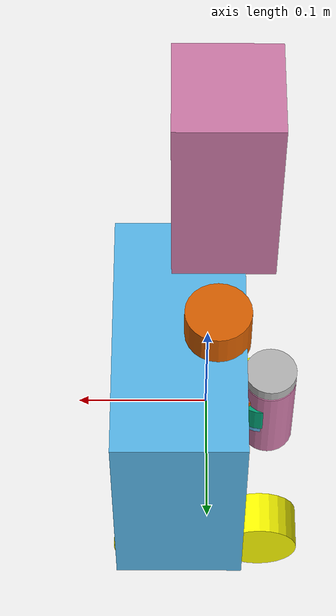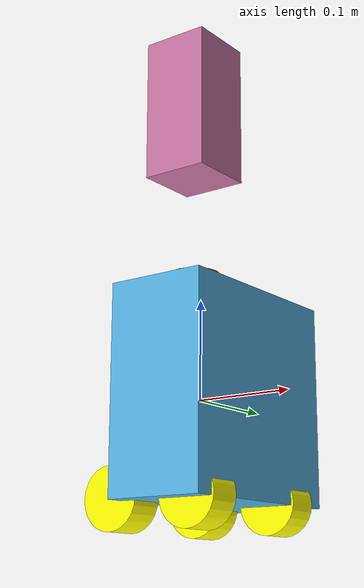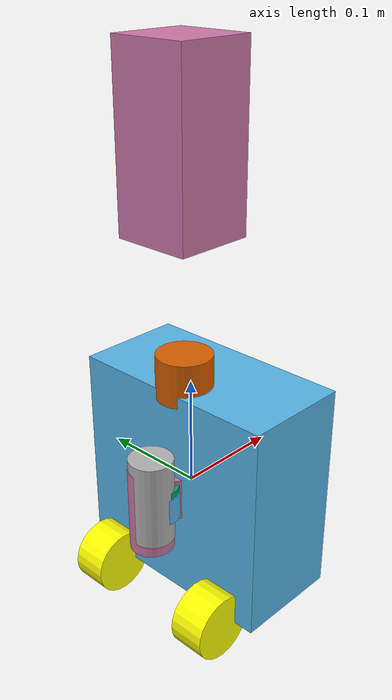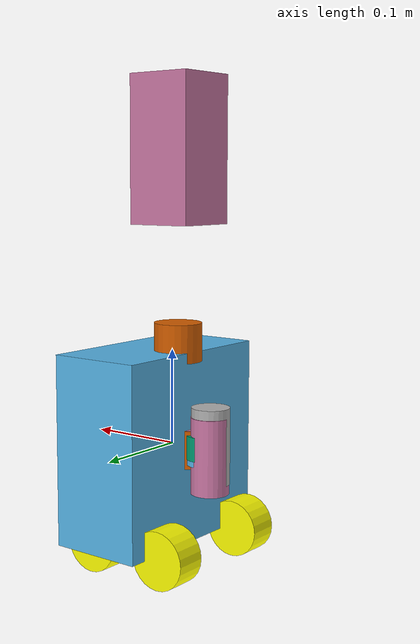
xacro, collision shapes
<?xml version='1.0' encoding='UTF-8'?>
<robot name="jedy">
  <link name="base_link"/>
  <link name="real_base_link">
    <inertial>
      <origin xyz="0.00124 1.38911e-10 0.02081" rpy="0.0 -0.0 0.0"/>
      <mass value="0.671312"/>
      <inertia ixx="0.001849" ixy="-8.30713e-06" ixz="-1.71308e-06" iyy="0.002122" iyz="1.45167e-06" izz="0.003179"/>
    </inertial>
    <visual>
      <geometry>
        <mesh filename="package://jedy_description/meshes/base_link.dae"/>
      </geometry>
      <origin xyz="0.0 0.0 0.0" rpy="0.0 -0.0 0.0"/>
    </visual>
    <collision>
      <geometry>
        <box size="0.200 0.200 0.100"/>
      </geometry>
      <origin xyz="0.0 0.0 0.021" rpy="0.0 0.0 0.0"/>
    </collision>
  </link>
  <link name="base_laser"/>
  <link name="rarm_link0">
    <inertial>
      <origin xyz="0.00750000000000114 0.0511983289893697 -0.0774229781318287" rpy="0.0 -0.0 0.0"/>
      <mass value="0.00775312250160503"/>
      <inertia ixx="0.0001" ixy="0.0" ixz="0.0" iyy="0.0001" iyz="0.0" izz="0.0001"/>
    </inertial>
    <visual>
      <geometry>
        <mesh filename="package://jedy_description/meshes/rarm_link0.dae"/>
      </geometry>
      <origin xyz="0.0 0.0 0.0" rpy="0.0 -0.0 0.0"/>
    </visual>
    <collision>
      <geometry>
        <cylinder radius="0.015" length="0.035"/>
      </geometry>
      <origin xyz="0.0075 0.05 -0.077" rpy="0.0 0.0 0.0"/>
    </collision>
  </link>
  <link name="rarm_link1">
    <inertial>
      <origin xyz="0.0060726594429343 0.0630174693748998 -0.076278104560333" rpy="0.0 -0.0 0.0"/>
      <mass value="0.0488819579417231"/>
      <inertia ixx="0.0001" ixy="-2.40958659059239e-08" ixz="-1.15959128616825e-08" iyy="0.0001" iyz="-4.77616974109193e-10" izz="0.0001"/>
    </inertial>
    <visual>
      <geometry>
        <mesh filename="package://jedy_description/meshes/rarm_link1.dae"/>
      </geometry>
      <origin xyz="0.0 0.0 0.0" rpy="0.0 -0.0 0.0"/>
    </visual>
    <collision>
      <geometry>
        <cylinder radius="0.018" length="0.025"/>
      </geometry>
      <origin xyz="0.006 0.063 -0.076" rpy="0.0 0.0 0.0"/>
    </collision>
  </link>
  <link name="rarm_link2">
    <inertial>
      <origin xyz="-0.013781849714382 0.078576090677525 -0.0510708977208851" rpy="0.0 -0.0 0.0"/>
      <mass value="0.0267722516782373"/>
      <inertia ixx="0.0001" ixy="-2.1054501660018e-08" ixz="1.16767691320589e-08" iyy="0.0001" iyz="3.18816576527695e-09" izz="0.0001"/>
    </inertial>
    <visual>
      <geometry>
        <mesh filename="package://jedy_description/meshes/rarm_link2.dae"/>
      </geometry>
      <origin xyz="0.0 0.0 0.0" rpy="0.0 -0.0 0.0"/>
    </visual>
    <collision>
      <geometry>
        <cylinder radius="0.018" length="0.040"/>
      </geometry>
      <origin xyz="-0.014 0.079 -0.051" rpy="0.0 0.0 0.0"/>
    </collision>
  </link>
  <link name="rarm_link3">
    <inertial>
      <origin xyz="-0.0419797687715683 0.0785695933122011 -0.0231515381895025" rpy="0.0 -0.0 0.0"/>
      <mass value="0.0356190541582585"/>
      <inertia ixx="0.0001" ixy="5.40131440804977e-08" ixz="-3.18560639543114e-09" iyy="0.0001" iyz="1.16768356053738e-08" izz="0.0001"/>
    </inertial>
    <visual>
      <geometry>
        <mesh filename="package://jedy_description/meshes/rarm_link3.dae"/>
      </geometry>
      <origin xyz="0.0 0.0 0.0" rpy="0.0 -0.0 0.0"/>
    </visual>
    <collision>
      <geometry>
        <cylinder radius="0.020" length="0.080"/>
      </geometry>
      <origin xyz="-0.042 0.079 -0.023" rpy="0.0 0.0 0.0"/>
    </collision>
  </link>
  <link name="rarm_link4">
    <inertial>
      <origin xyz="0.0016510438589472 0.0778057578962844 0.0566210301742714" rpy="0.0 -0.0 0.0"/>
      <mass value="0.00736377671410321"/>
      <inertia ixx="0.0001" ixy="4.64911587686377e-09" ixz="-1.21774119934071e-14" iyy="0.0001" iyz="-1.47706067420849e-12" izz="0.0001"/>
    </inertial>
    <visual>
      <geometry>
        <mesh filename="package://jedy_description/meshes/rarm_link4.dae"/>
      </geometry>
      <origin xyz="0.0 0.0 0.0" rpy="0.0 -0.0 0.0"/>
    </visual>
    <collision>
      <geometry>
        <cylinder radius="0.015" length="0.030"/>
      </geometry>
      <origin xyz="0.002 0.078 0.057" rpy="0.0 0.0 0.0"/>
    </collision>
  </link>
  <link name="rarm_link5">
    <inertial>
      <origin xyz="-0.000466911885189514 0.0624063256412892 0.0815726594429263" rpy="0.0 -0.0 0.0"/>
      <mass value="0.0488819579417229"/>
      <inertia ixx="0.0001" ixy="-1.80131374142072e-08" ixz="-2.38311555265213e-08" iyy="0.0001" iyz="1.15959128617003e-08" izz="0.0001"/>
    </inertial>
    <visual>
      <geometry>
        <mesh filename="package://jedy_description/meshes/rarm_link5.dae"/>
      </geometry>
      <origin xyz="0.0 0.0 0.0" rpy="0.0 -0.0 0.0"/>
    </visual>
    <collision>
      <geometry>
        <cylinder radius="0.018" length="0.028"/>
      </geometry>
      <origin xyz="-0.0005 0.062 0.082" rpy="0.0 0.0 0.0"/>
    </collision>
  </link>
  <link name="rarm_link6">
    <inertial>
      <origin xyz="-0.0330277428947269 0.0768233052251458 0.100619882815324" rpy="0.0 -0.0 0.0"/>
      <mass value="0.0333926389608614"/>
      <inertia ixx="0.0001" ixy="2.99884795330491e-07" ixz="1.36097064864093e-08" iyy="0.0001" iyz="2.71887959762946e-08" izz="0.0001"/>
    </inertial>
    <visual>
      <geometry>
        <mesh filename="package://jedy_description/meshes/rarm_link6.dae"/>
      </geometry>
      <origin xyz="0.0 0.0 0.0" rpy="0.0 -0.0 0.0"/>
    </visual>
    <collision>
      <geometry>
        <cylinder radius="0.020" length="0.025"/>
      </geometry>
      <origin xyz="-0.033 0.077 0.101" rpy="0.0 0.0 0.0"/>
    </collision>
  </link>
  <link name="rarm_link7">
    <inertial>
      <origin xyz="-0.00575793188359448 0.0909946641170031 0.154628764458567" rpy="0.0 -0.0 0.0"/>
      <mass value="0.00895541725275716"/>
      <inertia ixx="0.0001" ixy="2.90079247027908e-07" ixz="1.36850293455652e-12" iyy="0.0001" iyz="5.6685247064795e-13" izz="0.0001"/>
    </inertial>
    <visual>
      <geometry>
        <mesh filename="package://jedy_description/meshes/rarm_link7.dae"/>
      </geometry>
      <origin xyz="0.0 0.0 0.0" rpy="0.0 -0.0 0.0"/>
    </visual>
    <collision>
      <geometry>
        <box size="0.012 0.030 0.060"/>
      </geometry>
      <origin xyz="-0.006 0.091 0.155" rpy="0.0 0.0 0.0"/>
    </collision>
  </link>
  <link name="rarm_link8">
    <inertial>
      <origin xyz="-0.00575793188359814 0.064611878473499 0.165977177563427" rpy="0.0 -0.0 0.0"/>
      <mass value="0.00895541725275716"/>
      <inertia ixx="0.0001" ixy="-2.90079247027908e-07" ixz="1.3685029352065e-12" iyy="0.0001" iyz="-5.66852472660774e-13" izz="0.0001"/>
    </inertial>
    <visual>
      <geometry>
        <mesh filename="package://jedy_description/meshes/rarm_link8.dae"/>
      </geometry>
      <origin xyz="0.0 0.0 0.0" rpy="0.0 -0.0 0.0"/>
    </visual>
    <collision>
      <geometry>
        <box size="0.012 0.030 0.060"/>
      </geometry>
      <origin xyz="-0.006 0.065 0.166" rpy="0.0 0.0 0.0"/>
    </collision>
  </link>
  <link name="larm_link0">
    <inertial>
      <origin xyz="0.00750000000000804 0.0498016710106214 0.0774229781318285" rpy="0.0 -0.0 0.0"/>
      <mass value="0.00775312250160503"/>
      <inertia ixx="0.0001" ixy="3.76136064915158e-22" ixz="7.33040243663328e-09" iyy="0.0001" iyz="-9.82862838779766e-22" izz="0.0001"/>
    </inertial>
    <visual>
      <geometry>
        <mesh filename="package://jedy_description/meshes/larm_link0.dae"/>
      </geometry>
      <origin xyz="0.0 0.0 0.0" rpy="0.0 -0.0 0.0"/>
    </visual>
    <collision>
      <geometry>
        <cylinder radius="0.015" length="0.035"/>
      </geometry>
      <origin xyz="0.0075 0.05 0.077" rpy="0.0 0.0 0.0"/>
    </collision>
  </link>
  <link name="larm_link1">
    <inertial>
      <origin xyz="0.00742734055676281 -0.0939825306250985 -0.0607218954396666" rpy="0.0 -0.0 0.0"/>
      <mass value="0.0488819579417233"/>
      <inertia ixx="0.0001" ixy="-2.40958659059249e-08" ixz="1.15959128616777e-08" iyy="0.0001" iyz="4.77616974083206e-10" izz="0.0001"/>
    </inertial>
    <visual>
      <geometry>
        <mesh filename="package://jedy_description/meshes/larm_link1.dae"/>
      </geometry>
      <origin xyz="0.0 0.0 0.0" rpy="0.0 -0.0 0.0"/>
    </visual>
    <collision>
      <geometry>
        <cylinder radius="0.018" length="0.025"/>
      </geometry>
      <origin xyz="0.007 -0.094 -0.061" rpy="0.0 0.0 0.0"/>
    </collision>
  </link>
  <link name="larm_link2">
    <inertial>
      <origin xyz="-0.0137818497143928 -0.0785760906775208 -0.0509291022791145" rpy="0.0 -0.0 0.0"/>
      <mass value="0.0267722516782377"/>
      <inertia ixx="0.0001" ixy="2.10545016600191e-08" ixz="1.16767691320627e-08" iyy="0.0001" iyz="-3.18816576528393e-09" izz="0.0001"/>
    </inertial>
    <visual>
      <geometry>
        <mesh filename="package://jedy_description/meshes/larm_link2.dae"/>
      </geometry>
      <origin xyz="0.0 0.0 0.0" rpy="0.0 -0.0 0.0"/>
    </visual>
    <collision>
      <geometry>
        <cylinder radius="0.018" length="0.040"/>
      </geometry>
      <origin xyz="-0.014 -0.079 -0.051" rpy="0.0 0.0 0.0"/>
    </collision>
  </link>
  <link name="larm_link3">
    <inertial>
      <origin xyz="-0.0419797687715708 -0.0785572640137325 -0.012692437828887" rpy="0.0 -0.0 0.0"/>
      <mass value="0.035619054158259"/>
      <inertia ixx="0.0001" ixy="-4.07455626958971e-08" ixz="-3.18560639540328e-09" iyy="0.0001" iyz="-1.1676718625715e-08" izz="0.0001"/>
    </inertial>
    <visual>
      <geometry>
        <mesh filename="package://jedy_description/meshes/larm_link3.dae"/>
      </geometry>
      <origin xyz="0.0 0.0 0.0" rpy="0.0 -0.0 0.0"/>
    </visual>
    <collision>
      <geometry>
        <cylinder radius="0.020" length="0.080"/>
      </geometry>
      <origin xyz="-0.042 -0.079 -0.013" rpy="0.0 0.0 0.0"/>
    </collision>
  </link>
  <link name="larm_link4">
    <inertial>
      <origin xyz="0.00165104385894364 -0.0778057578962786 0.0573789698257278" rpy="0.0 -0.0 0.0"/>
      <mass value="0.0073637767141032"/>
      <inertia ixx="0.0001" ixy="-4.64911587686424e-09" ixz="-1.21774114868373e-14" iyy="0.0001" iyz="1.47706067387539e-12" izz="0.0001"/>
    </inertial>
    <visual>
      <geometry>
        <mesh filename="package://jedy_description/meshes/larm_link4.dae"/>
      </geometry>
      <origin xyz="0.0 0.0 0.0" rpy="0.0 -0.0 0.0"/>
    </visual>
    <collision>
      <geometry>
        <cylinder radius="0.015" length="0.030"/>
      </geometry>
      <origin xyz="0.002 -0.078 0.057" rpy="0.0 0.0 0.0"/>
    </collision>
  </link>
  <link name="larm_link5">
    <inertial>
      <origin xyz="-0.000466911885188184 -0.0932044741964692 0.083072659443248" rpy="0.0 -0.0 0.0"/>
      <mass value="0.0488819579417233"/>
      <inertia ixx="0.0001" ixy="-1.80131374141397e-08" ixz="-2.38311555265008e-08" iyy="0.0001" iyz="1.15959128617046e-08" izz="0.0001"/>
    </inertial>
    <visual>
      <geometry>
        <mesh filename="package://jedy_description/meshes/larm_link5.dae"/>
      </geometry>
      <origin xyz="0.0 0.0 0.0" rpy="0.0 -0.0 0.0"/>
    </visual>
    <collision>
      <geometry>
        <cylinder radius="0.018" length="0.028"/>
      </geometry>
      <origin xyz="-0.0005 -0.093 0.083" rpy="0.0 0.0 0.0"/>
    </collision>
  </link>
  <link name="larm_link6">
    <inertial>
      <origin xyz="-0.033027742894731 -0.0777001820412116 0.107380117184671" rpy="0.0 -0.0 0.0"/>
      <mass value="0.0333926389608612"/>
      <inertia ixx="0.0001" ixy="-2.99884795330496e-07" ixz="1.36097064863934e-08" iyy="0.0001" iyz="-1.25309536168303e-08" izz="0.0001"/>
    </inertial>
    <visual>
      <geometry>
        <mesh filename="package://jedy_description/meshes/larm_link6.dae"/>
      </geometry>
      <origin xyz="0.0 0.0 0.0" rpy="0.0 -0.0 0.0"/>
    </visual>
    <collision>
      <geometry>
        <cylinder radius="0.020" length="0.025"/>
      </geometry>
      <origin xyz="-0.033 -0.078 0.107" rpy="0.0 0.0 0.0"/>
    </collision>
  </link>
  <link name="larm_link7">
    <inertial>
      <origin xyz="-0.00575793188358857 -0.0909946641169996 0.165977177563423" rpy="0.0 -0.0 0.0"/>
      <mass value="0.00895541725275716"/>
      <inertia ixx="0.0001" ixy="-2.90079247027908e-07" ixz="1.3685029341339e-12" iyy="0.0001" iyz="-5.66852473175791e-13" izz="0.0001"/>
    </inertial>
    <visual>
      <geometry>
        <mesh filename="package://jedy_description/meshes/larm_link7.dae"/>
      </geometry>
      <origin xyz="0.0 0.0 0.0" rpy="0.0 -0.0 0.0"/>
    </visual>
    <collision>
      <geometry>
        <box size="0.012 0.030 0.060"/>
      </geometry>
      <origin xyz="-0.006 -0.091 0.166" rpy="0.0 0.0 0.0"/>
    </collision>
  </link>
  <link name="larm_link8">
    <inertial>
      <origin xyz="-0.00575793188358593 -0.0646118784734955 0.154628764458567" rpy="0.0 -0.0 0.0"/>
      <mass value="0.00895541725275716"/>
      <inertia ixx="0.0001" ixy="2.90079247027908e-07" ixz="1.36850293341796e-12" iyy="0.0001" iyz="5.66852471090155e-13" izz="0.0001"/>
    </inertial>
    <visual>
      <geometry>
        <mesh filename="package://jedy_description/meshes/larm_link8.dae"/>
      </geometry>
      <origin xyz="0.0 0.0 0.0" rpy="0.0 -0.0 0.0"/>
    </visual>
    <collision>
      <geometry>
        <box size="0.012 0.030 0.060"/>
      </geometry>
      <origin xyz="-0.006 -0.065 0.155" rpy="0.0 0.0 0.0"/>
    </collision>
  </link>
  <link name="head_link0">
    <inertial>
      <origin xyz="-1.73472e-18 1.22056e-18 0.023093" rpy="0.0 -0.0 0.0"/>
      <mass value="0.037398"/>
      <inertia ixx="8.69139e-05" ixy="-8.96373e-22" ixz="8.61164e-09" iyy="9.09972e-05" iyz="-5.25778e-09" izz="2.5436e-05"/>
    </inertial>
    <visual>
      <geometry>
        <mesh filename="package://jedy_description/meshes/head_link0.dae"/>
      </geometry>
      <origin xyz="0.0 0.0 0.0" rpy="0.0 -0.0 0.0"/>
    </visual>
    <collision>
      <geometry>
        <cylinder radius="0.025" length="0.040"/>
      </geometry>
      <origin xyz="0.0 0.0 0.023" rpy="0.0 0.0 0.0"/>
    </collision>
  </link>
  <link name="head_link1">
    <inertial>
      <origin xyz="-0.001016 3.60351e-18 0.186465" rpy="0.0 -0.0 0.0"/>
      <mass value="0.093045"/>
      <inertia ixx="0.000665" ixy="-1.79922e-07" ixz="-6.65543e-08" iyy="0.000652" iyz="-1.79583e-08" izz="0.000109"/>
    </inertial>
    <visual>
      <geometry>
        <mesh filename="package://jedy_description/meshes/head_link1.dae"/>
      </geometry>
      <origin xyz="0.0 0.0 0.0" rpy="0.0 -0.0 0.0"/>
    </visual>
    <collision>
      <geometry>
        <box size="0.070 0.070 0.150"/>
      </geometry>
      <origin xyz="-0.001 0.0 0.186" rpy="0.0 0.0 0.0"/>
    </collision>
  </link>
  <link name="front_right_wheel_link">
    <inertial>
      <origin xyz="-6.93889e-18 0.016915 0.0" rpy="0.0 -0.0 0.0"/>
      <mass value="0.095024"/>
      <inertia ixx="0.000174" ixy="5.9261e-22" ixz="5.04911e-20" iyy="0.000173" iyz="-1.9762e-20" izz="0.000262"/>
    </inertial>
    <visual>
      <geometry>
        <cylinder radius="0.030082940123975277" length="0.0336999895516783"/>
      </geometry>
      <origin xyz="-0.01364997576456517 2.9239803552627563e-05 -8.88695940375328e-05" rpy="0.0 1.5707963267948963 0.0"/>
      <material name="yellow">
        <color rgba="1.0 1.0 0.0 1.0"/>
      </material>
    </visual>
    <collision>
      <geometry>
        <cylinder radius="0.030082940123975277" length="0.0336999895516783"/>
      </geometry>
      <origin xyz="-0.01364997576456517 2.9239803552627563e-05 -8.88695940375328e-05" rpy="0.0 1.5707963267948963 0.0"/>
    </collision>
  </link>
  <link name="front_left_wheel_link">
    <inertial>
      <origin xyz="-6.93889e-18 0.016915 0.0" rpy="0.0 -0.0 0.0"/>
      <mass value="0.095024"/>
      <inertia ixx="0.000174" ixy="5.9261e-22" ixz="5.04911e-20" iyy="0.000173" iyz="-1.9762e-20" izz="0.000262"/>
    </inertial>
    <visual>
      <geometry>
        <cylinder radius="0.03012910485267639" length="0.0336999895516783"/>
      </geometry>
      <origin xyz="0.01364997576456517 -0.00011649541556835175 -0.00010368041694164276" rpy="0.0 1.5707963267948963 0.0"/>
      <material name="yellow">
        <color rgba="1.0 1.0 0.0 1.0"/>
      </material>
    </visual>
    <collision>
      <geometry>
        <cylinder radius="0.03012910485267639" length="0.0336999895516783"/>
      </geometry>
      <origin xyz="0.01364997576456517 -0.00011649541556835175 -0.00010368041694164276" rpy="0.0 1.5707963267948963 0.0"/>
    </collision>
  </link>
  <link name="rear_right_wheel_link">
    <inertial>
      <origin xyz="-6.93889e-18 0.016915 0.0" rpy="0.0 -0.0 0.0"/>
      <mass value="0.095024"/>
      <inertia ixx="0.000174" ixy="5.9261e-22" ixz="5.04911e-20" iyy="0.000173" iyz="-1.9762e-20" izz="0.000262"/>
    </inertial>
    <visual>
      <geometry>
        <cylinder radius="0.030142544768750668" length="0.0336999895516783"/>
      </geometry>
      <origin xyz="-0.01364997576456517 0.00010615494102239609 -3.0875205993652344e-05" rpy="0.0 1.5707963267948963 0.0"/>
      <material name="yellow">
        <color rgba="1.0 1.0 0.0 1.0"/>
      </material>
    </visual>
    <collision>
      <geometry>
        <cylinder radius="0.030142544768750668" length="0.0336999895516783"/>
      </geometry>
      <origin xyz="-0.01364997576456517 0.00010615494102239609 -3.0875205993652344e-05" rpy="0.0 1.5707963267948963 0.0"/>
    </collision>
  </link>
  <link name="rear_left_wheel_link">
    <inertial>
      <origin xyz="-6.93889e-18 0.016915 0.0" rpy="0.0 -0.0 0.0"/>
      <mass value="0.095024"/>
      <inertia ixx="0.000174" ixy="5.9261e-22" ixz="5.04911e-20" iyy="0.000173" iyz="-1.9762e-20" izz="0.000262"/>
    </inertial>
    <visual>
      <geometry>
        <cylinder radius="0.030229220166802406" length="0.0336999895516783"/>
      </geometry>
      <origin xyz="0.01364997576456517 0.00011532939970493317 5.5635347962379456e-05" rpy="0.0 1.5707963267948963 0.0"/>
      <material name="yellow">
        <color rgba="1.0 1.0 0.0 1.0"/>
      </material>
    </visual>
    <collision>
      <geometry>
        <cylinder radius="0.030229220166802406" length="0.0336999895516783"/>
      </geometry>
      <origin xyz="0.01364997576456517 0.00011532939970493317 5.5635347962379456e-05" rpy="0.0 1.5707963267948963 0.0"/>
    </collision>
  </link>
  <link name="camera_link">
    <inertial>
      <origin xyz="0.0 0.0 0.0" rpy="0.0 -0.0 0.0"/>
      <mass value="0.0"/>
      <inertia ixx="0.003881243" ixy="0.0" ixz="0.0" iyy="0.00049894" iyz="0.0" izz="0.003879257"/>
    </inertial>
  </link>
  <link name="camera_color_frame"/>
  <link name="camera_color_optical_frame"/>
  <link name="camera_depth_frame"/>
  <link name="camera_depth_optical_frame"/>
  <joint name="pseudo_base_joint" type="fixed">
    <limit effort="0.0" velocity="0.0"/>
    <parent link="base_link"/>
    <child link="real_base_link"/>
    <axis xyz="0. 0. 0."/>
    <origin xyz="0.0 0.0 0.0" rpy="1.5707926535897931 -0.0 1.5707926535897931"/>
  </joint>
  <joint name="base_laser_joint" type="fixed">
    <limit effort="0.0" velocity="0.0"/>
    <parent link="base_link"/>
    <child link="base_laser"/>
    <axis xyz="1. 0. 0."/>
    <origin xyz="0.1 0.0 -0.0" rpy="0.0 -0.0 0.0"/>
  </joint>
  <joint name="rarm_joint0" type="revolute">
    <limit effort="0.48" velocity="6.55" lower="-2.35" upper="2.35"/>
    <parent link="real_base_link"/>
    <child link="rarm_link0"/>
    <axis xyz="0. 1. 0."/>
    <origin xyz="-0.0505 0.0685 -0.0075" rpy="-1.5707926535897931 -1.5707926535897931 -0.001592653589793114"/>
  </joint>
  <joint name="rarm_joint1" type="revolute">
    <limit effort="0.48" velocity="6.55" lower="-2.35" upper="0.52"/>
    <parent link="rarm_link0"/>
    <child link="rarm_link1"/>
    <axis xyz="1. 0. 0."/>
    <origin xyz="0.0 -0.028 0.0" rpy="0.0 -0.0 0.0"/>
  </joint>
  <joint name="rarm_joint2" type="revolute">
    <limit effort="0.48" velocity="6.55" lower="-2.35" upper="2.35"/>
    <parent link="rarm_link1"/>
    <child link="rarm_link2"/>
    <axis xyz="0. 0. 1."/>
    <origin xyz="0.0 0.0 -0.0175" rpy="0.0 -0.0 0.0"/>
  </joint>
  <joint name="rarm_joint3" type="revolute">
    <limit effort="0.48" velocity="6.55" lower="-2.35" upper="2.35"/>
    <parent link="rarm_link2"/>
    <child link="rarm_link3"/>
    <axis xyz="0. 1. 0."/>
    <origin xyz="0.0 0.0 -0.033" rpy="0.0 -0.0 0.0"/>
  </joint>
  <joint name="rarm_joint4" type="revolute">
    <limit effort="0.48" velocity="6.55" lower="-2.35" upper="2.35"/>
    <parent link="rarm_link3"/>
    <child link="rarm_link4"/>
    <axis xyz="0. 0. 1."/>
    <origin xyz="-0.0024791 0.0006946 -0.075" rpy="0.0 -0.0 0.0"/>
  </joint>
  <joint name="rarm_joint5" type="revolute">
    <limit effort="0.48" velocity="6.55" lower="-1.57" upper="1.05"/>
    <parent link="rarm_link4"/>
    <child link="rarm_link5"/>
    <axis xyz="0. 1. 0."/>
    <origin xyz="0.0 0.0 -0.026" rpy="0.0 -0.0 0.0"/>
  </joint>
  <joint name="rarm_joint6" type="revolute">
    <limit effort="0.48" velocity="6.55" lower="-1.57" upper="1.57"/>
    <parent link="rarm_link5"/>
    <child link="rarm_link6"/>
    <axis xyz="1. 0. 0."/>
    <origin xyz="0.0 0.0 -0.021" rpy="0.0 -0.0 0.0"/>
  </joint>
  <joint name="rarm_gripper_joint" type="revolute">
    <limit effort="0.48" velocity="6.55" lower="-0.5" upper="1.57"/>
    <parent link="rarm_link6"/>
    <child link="rarm_link7"/>
    <axis xyz="-1. 0. 0."/>
    <origin xyz="0.0 -0.011737 -0.056303" rpy="0.0 -0.0 0.0"/>
  </joint>
  <joint name="rarm_mimic_gripper_joint" type="revolute">
    <limit effort="0.48" velocity="6.55" lower="-1.57" upper="0.5"/>
    <mimic joint="rarm_gripper_joint" multiplier="-1.0" offset="0.0"/>
    <parent link="rarm_link6"/>
    <child link="rarm_link8"/>
    <axis xyz="-1. 0. 0."/>
    <origin xyz="0.0 0.011741 -0.056303" rpy="0.0 -0.0 0.0"/>
  </joint>
  <joint name="larm_joint0" type="revolute">
    <limit effort="0.48" velocity="6.55" lower="-2.35" upper="2.35"/>
    <parent link="real_base_link"/>
    <child link="larm_link0"/>
    <axis xyz="0. 1. 0."/>
    <origin xyz="0.0505 0.0685 -0.0075" rpy="-1.5707926535897931 -1.5707926535897931 3.141592653589793"/>
  </joint>
  <joint name="larm_joint1" type="revolute">
    <limit effort="0.48" velocity="6.55" lower="-0.56" upper="2.35"/>
    <parent link="larm_link0"/>
    <child link="larm_link1"/>
    <axis xyz="1. 0. 0."/>
    <origin xyz="0.0 -0.028 0.0" rpy="3.1415853071795867 -0.0 0.0"/>
  </joint>
  <joint name="larm_joint2" type="revolute">
    <limit effort="0.48" velocity="6.55" lower="-2.35" upper="2.35"/>
    <parent link="larm_link1"/>
    <child link="larm_link2"/>
    <axis xyz="0. 0. 1."/>
    <origin xyz="0.0 0.0 -0.0175" rpy="0.0 -0.0 0.0"/>
  </joint>
  <joint name="larm_joint3" type="revolute">
    <limit effort="0.48" velocity="6.55" lower="-2.35" upper="2.35"/>
    <parent link="larm_link2"/>
    <child link="larm_link3"/>
    <axis xyz="0. 1. 0."/>
    <origin xyz="0.0 0.0 -0.033" rpy="0.0 -0.0 0.0"/>
  </joint>
  <joint name="larm_joint4" type="revolute">
    <limit effort="0.48" velocity="6.55" lower="-2.35" upper="2.35"/>
    <parent link="larm_link3"/>
    <child link="larm_link4"/>
    <axis xyz="0. 0. 1."/>
    <origin xyz="-0.0024791 -0.0006946 -0.075" rpy="0.0 -0.0 0.0"/>
  </joint>
  <joint name="larm_joint5" type="revolute">
    <limit effort="0.48" velocity="6.55" lower="-1.57" upper="1.05"/>
    <parent link="larm_link4"/>
    <child link="larm_link5"/>
    <axis xyz="0. 1. 0."/>
    <origin xyz="0.0 0.0 -0.026" rpy="0.0 -0.0 0.0"/>
  </joint>
  <joint name="larm_joint6" type="revolute">
    <limit effort="0.48" velocity="6.55" lower="-1.57" upper="1.57"/>
    <parent link="larm_link5"/>
    <child link="larm_link6"/>
    <axis xyz="1. 0. 0."/>
    <origin xyz="0.0 0.0 -0.021" rpy="0.0 -0.0 0.0"/>
  </joint>
  <joint name="larm_gripper_joint" type="revolute">
    <limit effort="0.48" velocity="6.55" lower="-0.5" upper="1.57"/>
    <parent link="larm_link6"/>
    <child link="larm_link7"/>
    <axis xyz="1. 0. 0."/>
    <origin xyz="0.0 0.011737 -0.056303" rpy="0.0 -0.0 0.0"/>
  </joint>
  <joint name="larm_mimic_gripper_joint" type="revolute">
    <limit effort="0.48" velocity="6.55" lower="-1.57" upper="0.5"/>
    <mimic joint="larm_gripper_joint" multiplier="-1.0" offset="0.0"/>
    <parent link="larm_link6"/>
    <child link="larm_link8"/>
    <axis xyz="1. 0. 0."/>
    <origin xyz="0.0 -0.011741 -0.056303" rpy="0.0 -0.0 0.0"/>
  </joint>
  <joint name="head_joint0" type="revolute">
    <limit effort="0.48" velocity="6.55" lower="-2.35" upper="2.35"/>
    <parent link="real_base_link"/>
    <child link="head_link0"/>
    <axis xyz="0. 0. 1."/>
    <origin xyz="0.0 0.086 -0.0075" rpy="-3.141592653589793 -1.5707926535897931 1.5707926535897931"/>
  </joint>
  <joint name="head_joint1" type="revolute">
    <limit effort="0.48" velocity="6.55" lower="-1.57" upper="1.57"/>
    <parent link="head_link0"/>
    <child link="head_link1"/>
    <axis xyz="0. 1. 0."/>
    <origin xyz="0.0 0.0 0.033" rpy="0.0 -0.0 0.0"/>
  </joint>
  <joint name="front_right_wheel_joint" type="continuous">
    <limit effort="100.0" velocity="6.55"/>
    <parent link="real_base_link"/>
    <child link="front_right_wheel_link"/>
    <axis xyz="1. 0. 0."/>
    <origin xyz="-0.0505 -0.097 0.0435" rpy="0.0 -0.0 0.0"/>
  </joint>
  <joint name="front_left_wheel_joint" type="continuous">
    <limit effort="100.0" velocity="6.55"/>
    <parent link="real_base_link"/>
    <child link="front_left_wheel_link"/>
    <axis xyz="1. 0. 0."/>
    <origin xyz="0.0505 -0.097 0.0435" rpy="0.0 -0.0 0.0"/>
  </joint>
  <joint name="rear_right_wheel_joint" type="continuous">
    <limit effort="100.0" velocity="6.55"/>
    <parent link="real_base_link"/>
    <child link="rear_right_wheel_link"/>
    <axis xyz="1. 0. 0."/>
    <origin xyz="-0.0505 -0.097 -0.0435" rpy="0.0 -0.0 0.0"/>
  </joint>
  <joint name="rear_left_wheel_joint" type="continuous">
    <limit effort="100.0" velocity="6.55"/>
    <parent link="real_base_link"/>
    <child link="rear_left_wheel_link"/>
    <axis xyz="1. 0. 0."/>
    <origin xyz="0.0505 -0.097 -0.0435" rpy="0.0 -0.0 0.0"/>
  </joint>
  <joint name="camera_joint" type="fixed">
    <limit effort="0.0" velocity="0.0"/>
    <parent link="head_link1"/>
    <child link="camera_link"/>
    <axis xyz="1. 0. 0."/>
    <origin xyz="0.02 0.01 0.06" rpy="0.0 -0.0 0.0"/>
  </joint>
  <joint name="camera_color_frame_joint" type="fixed">
    <limit effort="0.0" velocity="0.0"/>
    <parent link="camera_link"/>
    <child link="camera_color_frame"/>
    <axis xyz="1. 0. 0."/>
    <origin xyz="0.0 0.0 0.0" rpy="0.0 -0.0 0.0"/>
  </joint>
  <joint name="camera_color_optical_frame_joint" type="fixed">
    <limit effort="0.0" velocity="0.0"/>
    <parent link="camera_color_frame"/>
    <child link="camera_color_optical_frame"/>
    <axis xyz="1. 0. 0."/>
    <origin xyz="0.0 0.0 0.0" rpy="-1.57 -0.0 -1.57"/>
  </joint>
  <joint name="camera_depth_frame_joint" type="fixed">
    <limit effort="0.0" velocity="0.0"/>
    <parent link="camera_link"/>
    <child link="camera_depth_frame"/>
    <axis xyz="1. 0. 0."/>
    <origin xyz="0.0 0.0 0.0" rpy="0.0 -0.0 0.0"/>
  </joint>
  <joint name="camera_depth_optical_frame_joint" type="fixed">
    <limit effort="0.0" velocity="0.0"/>
    <parent link="camera_depth_frame"/>
    <child link="camera_depth_optical_frame"/>
    <axis xyz="1. 0. 0."/>
    <origin xyz="0.0 0.0 0.0" rpy="-1.57 -0.0 -1.57"/>
  </joint>
  <xacro:arg xmlns:xacro="http://www.ros.org/wiki/xacro" name="head_j0_init" default="0.0"/>
  <xacro:arg xmlns:xacro="http://www.ros.org/wiki/xacro" name="head_j1_init" default="0.0"/>
  <xacro:arg xmlns:xacro="http://www.ros.org/wiki/xacro" name="rarm_j0_init" default="0.0"/>
  <xacro:arg xmlns:xacro="http://www.ros.org/wiki/xacro" name="rarm_j1_init" default="0.0"/>
  <xacro:arg xmlns:xacro="http://www.ros.org/wiki/xacro" name="rarm_j2_init" default="0.0"/>
  <xacro:arg xmlns:xacro="http://www.ros.org/wiki/xacro" name="rarm_j3_init" default="0.0"/>
  <xacro:arg xmlns:xacro="http://www.ros.org/wiki/xacro" name="rarm_j4_init" default="0.0"/>
  <xacro:arg xmlns:xacro="http://www.ros.org/wiki/xacro" name="rarm_j5_init" default="0.0"/>
  <xacro:arg xmlns:xacro="http://www.ros.org/wiki/xacro" name="rarm_j6_init" default="0.0"/>
  <xacro:arg xmlns:xacro="http://www.ros.org/wiki/xacro" name="rarm_gripper_init" default="0.0"/>
  <xacro:arg xmlns:xacro="http://www.ros.org/wiki/xacro" name="larm_j0_init" default="0.0"/>
  <xacro:arg xmlns:xacro="http://www.ros.org/wiki/xacro" name="larm_j1_init" default="0.0"/>
  <xacro:arg xmlns:xacro="http://www.ros.org/wiki/xacro" name="larm_j2_init" default="0.0"/>
  <xacro:arg xmlns:xacro="http://www.ros.org/wiki/xacro" name="larm_j3_init" default="0.0"/>
  <xacro:arg xmlns:xacro="http://www.ros.org/wiki/xacro" name="larm_j4_init" default="0.0"/>
  <xacro:arg xmlns:xacro="http://www.ros.org/wiki/xacro" name="larm_j5_init" default="0.0"/>
  <xacro:arg xmlns:xacro="http://www.ros.org/wiki/xacro" name="larm_j6_init" default="0.0"/>
  <xacro:arg xmlns:xacro="http://www.ros.org/wiki/xacro" name="larm_gripper_init" default="0.0"/>
  <xacro:arg xmlns:xacro="http://www.ros.org/wiki/xacro" name="controllers_config" default=""/>
  <gazebo reference="real_base_link">
    <mu1>0.5</mu1>
    <mu2>0.5</mu2>
    <kp>100000</kp>
    <kd>1</kd>
    <gravity>true</gravity>
  </gazebo>
  <gazebo reference="base_laser">
    <sensor name="laser" type="gpu_lidar">
      <pose>0 0 0 0 0 0</pose>
      <visualize>true</visualize>
      <update_rate>8</update_rate>
      <topic>/scan_raw</topic>
      <gz:frame_id xmlns:gz="http://sdformat.org/schemas/sensor">base_laser</gz:frame_id>
      <lidar>
        <scan>
          <horizontal>
            <samples>360</samples>
            <resolution>1</resolution>
            <min_angle>-1.5708</min_angle>
            <max_angle>1.5708</max_angle>
          </horizontal>
        </scan>
        <range>
          <min>0.12</min>
          <max>8.0</max>
          <resolution>0.01</resolution>
        </range>
        <noise>
          <type>gaussian</type>
          <mean>0.0</mean>
          <stddev>0.01</stddev>
        </noise>
      </lidar>
    </sensor>
  </gazebo>
  <gazebo reference="rarm_joint0">
    <mu1>0.4</mu1>
    <mu2>0.4</mu2>
    <kp>100000</kp>
    <kd>1</kd>
    <self_collide>false</self_collide>
  </gazebo>
  <gazebo reference="rarm_joint1">
    <mu1>0.4</mu1>
    <mu2>0.4</mu2>
    <kp>100000</kp>
    <kd>1</kd>
  </gazebo>
  <gazebo reference="rarm_joint2">
    <mu1>0.4</mu1>
    <mu2>0.4</mu2>
    <kp>100000</kp>
    <kd>1</kd>
  </gazebo>
  <gazebo reference="rarm_joint3">
    <mu1>0.4</mu1>
    <mu2>0.4</mu2>
    <kp>100000</kp>
    <kd>1</kd>
  </gazebo>
  <gazebo reference="rarm_joint4">
    <mu1>0.4</mu1>
    <mu2>0.4</mu2>
    <kp>100000</kp>
    <kd>1</kd>
  </gazebo>
  <gazebo reference="rarm_joint5">
    <mu1>0.4</mu1>
    <mu2>0.4</mu2>
    <kp>100000</kp>
    <kd>1</kd>
  </gazebo>
  <gazebo reference="rarm_joint6">
    <mu1>0.4</mu1>
    <mu2>0.4</mu2>
    <kp>100000</kp>
    <kd>1</kd>
  </gazebo>
  <gazebo reference="rarm_gripper_joint">
    <mu1>0.4</mu1>
    <mu2>0.4</mu2>
    <kp>100000</kp>
    <kd>1</kd>
  </gazebo>
  <gazebo reference="rarm_mimic_gripper_joint">
    <mu1>0.4</mu1>
    <mu2>0.4</mu2>
    <kp>100000</kp>
    <kd>1</kd>
  </gazebo>
  <gazebo reference="larm_joint0">
    <mu1>0.4</mu1>
    <mu2>0.4</mu2>
    <kp>100000</kp>
    <kd>1</kd>
  </gazebo>
  <gazebo reference="larm_joint1">
    <mu1>0.4</mu1>
    <mu2>0.4</mu2>
    <kp>100000</kp>
    <kd>1</kd>
  </gazebo>
  <gazebo reference="larm_joint2">
    <mu1>0.4</mu1>
    <mu2>0.4</mu2>
    <kp>100000</kp>
    <kd>1</kd>
  </gazebo>
  <gazebo reference="larm_joint3">
    <mu1>0.4</mu1>
    <mu2>0.4</mu2>
    <kp>100000</kp>
    <kd>1</kd>
  </gazebo>
  <gazebo reference="larm_joint4">
    <mu1>0.4</mu1>
    <mu2>0.4</mu2>
    <kp>100000</kp>
    <kd>1</kd>
  </gazebo>
  <gazebo reference="larm_joint5">
    <mu1>0.4</mu1>
    <mu2>0.4</mu2>
    <kp>100000</kp>
    <kd>1</kd>
  </gazebo>
  <gazebo reference="larm_joint6">
    <mu1>0.4</mu1>
    <mu2>0.4</mu2>
    <kp>100000</kp>
    <kd>1</kd>
  </gazebo>
  <gazebo reference="larm_gripper_joint">
    <mu1>0.4</mu1>
    <mu2>0.4</mu2>
    <kp>100000</kp>
    <kd>1</kd>
  </gazebo>
  <gazebo reference="larm_mimic_gripper_joint">
    <mu1>0.4</mu1>
    <mu2>0.4</mu2>
    <kp>100000</kp>
    <kd>1</kd>
  </gazebo>
  <gazebo reference="head_joint0">
    <mu1>0.4</mu1>
    <mu2>0.4</mu2>
    <kp>100000</kp>
    <kd>1</kd>
  </gazebo>
  <gazebo reference="head_joint1">
    <mu1>0.4</mu1>
    <mu2>0.4</mu2>
    <kp>100000</kp>
    <kd>1</kd>
  </gazebo>
  <gazebo reference="front_right_wheel_joint">
    <mu1>100.0</mu1>
    <mu2>100.0</mu2>
    <kp>100000</kp>
    <kd>1</kd>
    <maxVel value="100.0"/>
    <minDepth value="0.0"/>
  </gazebo>
  <gazebo reference="front_left_wheel_joint">
    <mu1>100.0</mu1>
    <mu2>100.0</mu2>
    <kp>100000</kp>
    <kd>1</kd>
    <maxVel value="100.0"/>
    <minDepth value="0.0"/>
  </gazebo>
  <gazebo reference="rear_right_wheel_joint">
    <mu1>100.0</mu1>
    <mu2>100.0</mu2>
    <kp>100000</kp>
    <kd>1</kd>
    <maxVel value="100.0"/>
    <minDepth value="0.0"/>
  </gazebo>
  <gazebo reference="rear_left_wheel_joint">
    <mu1>100.0</mu1>
    <mu2>100.0</mu2>
    <kp>100000</kp>
    <kd>1</kd>
    <maxVel value="100.0"/>
    <minDepth value="0.0"/>
  </gazebo>
  <gazebo reference="front_right_wheel_link">
    <mu1>100.0</mu1>
    <mu2>100.0</mu2>
    <kp>100000</kp>
    <kd>1</kd>
    <material>Gazebo/Yellow</material>
  </gazebo>
  <gazebo reference="front_left_wheel_link">
    <mu1>100.0</mu1>
    <mu2>100.0</mu2>
    <kp>100000</kp>
    <kd>1</kd>
    <material>Gazebo/Yellow</material>
  </gazebo>
  <gazebo reference="rear_right_wheel_link">
    <mu1>100.0</mu1>
    <mu2>100.0</mu2>
    <kp>100000</kp>
    <kd>1</kd>
    <material>Gazebo/Yellow</material>
  </gazebo>
  <gazebo reference="rear_left_wheel_link">
    <mu1>100.0</mu1>
    <mu2>100.0</mu2>
    <kp>100000</kp>
    <kd>1</kd>
    <material>Gazebo/Yellow</material>
  </gazebo>
  <gazebo reference="camera_link">
    <sensor name="camera" type="rgbd_camera">
      <always_on>1</always_on>
      <update_rate>15</update_rate>
      <visualize>true</visualize>
      <topic>camera</topic>
      <gz_frame_id>camera_color_optical_frame</gz_frame_id>
      <camera name="camera">
        <horizontal_fov>0.872665</horizontal_fov>
        <image>
          <width>480</width>
          <height>360</height>
          <format>R8G8B8</format>
        </image>
        <clip>
          <near>0.05</near>
          <far>8.0</far>
        </clip>
        <noise>
          <type>gaussian</type>
          <mean>0.0</mean>
          <stddev>0.007</stddev>
        </noise>
      </camera>
    </sensor>
  </gazebo>
  <gazebo reference="base_link">
    <sensor name="imu_sensor" type="imu">
      <pose>0 0 0 0 0 0</pose>
      <always_on>true</always_on>
      <update_rate>50</update_rate>
      <visualize>false</visualize>
      <topic>/imu</topic>
      <gz_frame_id>base_link</gz_frame_id>
      <imu>
        <orientation_reference_frame>
          <localization>CUSTOM</localization>
          <custom_rpy parent_frame="base_link">0 0 0</custom_rpy>
        </orientation_reference_frame>
        <angular_velocity>
          <x>
            <noise type="gaussian">
              <mean>0.0</mean>
              <stddev>2e-4</stddev>
            </noise>
          </x>
          <y>
            <noise type="gaussian">
              <mean>0.0</mean>
              <stddev>2e-4</stddev>
            </noise>
          </y>
          <z>
            <noise type="gaussian">
              <mean>0.0</mean>
              <stddev>2e-4</stddev>
            </noise>
          </z>
        </angular_velocity>
        <linear_acceleration>
          <x>
            <noise type="gaussian">
              <mean>0.0</mean>
              <stddev>1.7e-2</stddev>
            </noise>
          </x>
          <y>
            <noise type="gaussian">
              <mean>0.0</mean>
              <stddev>1.7e-2</stddev>
            </noise>
          </y>
          <z>
            <noise type="gaussian">
              <mean>0.0</mean>
              <stddev>1.7e-2</stddev>
            </noise>
          </z>
        </linear_acceleration>
      </imu>
    </sensor>
  </gazebo>
  <ros2_control name="GazeboSimSystem" type="system">
    <hardware>
      <plugin>gz_ros2_control/GazeboSimSystem</plugin>
    </hardware>
    <joint name="head_joint0">
      <command_interface name="position">
        <param name="min">-2.35</param>
        <param name="max">2.35</param>
      </command_interface>
      <state_interface name="position">
        <param name="initial_value">$(arg head_j0_init)</param>
      </state_interface>
      <state_interface name="velocity"/>
    </joint>
    <joint name="head_joint1">
      <command_interface name="position">
        <param name="min">-1.57</param>
        <param name="max">1.57</param>
      </command_interface>
      <state_interface name="position">
        <param name="initial_value">$(arg head_j1_init)</param>
      </state_interface>
      <state_interface name="velocity"/>
    </joint>
    <joint name="rarm_joint0">
      <command_interface name="position">
        <param name="min">-2.35</param>
        <param name="max">2.35</param>
      </command_interface>
      <state_interface name="position">
        <param name="initial_value">$(arg rarm_j0_init)</param>
      </state_interface>
      <state_interface name="velocity"/>
    </joint>
    <joint name="rarm_joint1">
      <command_interface name="position">
        <param name="min">-2.35</param>
        <param name="max">0.52</param>
      </command_interface>
      <state_interface name="position">
        <param name="initial_value">$(arg rarm_j1_init)</param>
      </state_interface>
      <state_interface name="velocity"/>
    </joint>
    <joint name="rarm_joint2">
      <command_interface name="position">
        <param name="min">-2.35</param>
        <param name="max">2.35</param>
      </command_interface>
      <state_interface name="position">
        <param name="initial_value">$(arg rarm_j2_init)</param>
      </state_interface>
      <state_interface name="velocity"/>
    </joint>
    <joint name="rarm_joint3">
      <command_interface name="position">
        <param name="min">-2.35</param>
        <param name="max">2.35</param>
      </command_interface>
      <state_interface name="position">
        <param name="initial_value">$(arg rarm_j3_init)</param>
      </state_interface>
      <state_interface name="velocity"/>
    </joint>
    <joint name="rarm_joint4">
      <command_interface name="position">
        <param name="min">-2.35</param>
        <param name="max">2.35</param>
      </command_interface>
      <state_interface name="position">
        <param name="initial_value">$(arg rarm_j4_init)</param>
      </state_interface>
      <state_interface name="velocity"/>
    </joint>
    <joint name="rarm_joint5">
      <command_interface name="position">
        <param name="min">-1.57</param>
        <param name="max">1.05</param>
      </command_interface>
      <state_interface name="position">
        <param name="initial_value">$(arg rarm_j5_init)</param>
      </state_interface>
      <state_interface name="velocity"/>
    </joint>
    <joint name="rarm_joint6">
      <command_interface name="position">
        <param name="min">-1.57</param>
        <param name="max">1.57</param>
      </command_interface>
      <state_interface name="position">
        <param name="initial_value">$(arg rarm_j6_init)</param>
      </state_interface>
      <state_interface name="velocity"/>
    </joint>
    <joint name="larm_joint0">
      <command_interface name="position">
        <param name="min">-2.35</param>
        <param name="max">2.35</param>
      </command_interface>
      <state_interface name="position">
        <param name="initial_value">$(arg larm_j0_init)</param>
      </state_interface>
      <state_interface name="velocity"/>
    </joint>
    <joint name="larm_joint1">
      <command_interface name="position">
        <param name="min">-0.56</param>
        <param name="max">2.35</param>
      </command_interface>
      <state_interface name="position">
        <param name="initial_value">$(arg larm_j1_init)</param>
      </state_interface>
      <state_interface name="velocity"/>
    </joint>
    <joint name="larm_joint2">
      <command_interface name="position">
        <param name="min">-2.35</param>
        <param name="max">2.35</param>
      </command_interface>
      <state_interface name="position">
        <param name="initial_value">$(arg larm_j2_init)</param>
      </state_interface>
      <state_interface name="velocity"/>
    </joint>
    <joint name="larm_joint3">
      <command_interface name="position">
        <param name="min">-2.35</param>
        <param name="max">2.35</param>
      </command_interface>
      <state_interface name="position">
        <param name="initial_value">$(arg larm_j3_init)</param>
      </state_interface>
      <state_interface name="velocity"/>
    </joint>
    <joint name="larm_joint4">
      <command_interface name="position">
        <param name="min">-2.35</param>
        <param name="max">2.35</param>
      </command_interface>
      <state_interface name="position">
        <param name="initial_value">$(arg larm_j4_init)</param>
      </state_interface>
      <state_interface name="velocity"/>
    </joint>
    <joint name="larm_joint5">
      <command_interface name="position">
        <param name="min">-1.57</param>
        <param name="max">1.05</param>
      </command_interface>
      <state_interface name="position">
        <param name="initial_value">$(arg larm_j5_init)</param>
      </state_interface>
      <state_interface name="velocity"/>
    </joint>
    <joint name="larm_joint6">
      <command_interface name="position">
        <param name="min">-1.57</param>
        <param name="max">1.57</param>
      </command_interface>
      <state_interface name="position">
        <param name="initial_value">$(arg larm_j6_init)</param>
      </state_interface>
      <state_interface name="velocity"/>
    </joint>
    <joint name="rarm_gripper_joint">
      <command_interface name="position">
        <param name="min">-1.57</param>
        <param name="max">0.5</param>
      </command_interface>
      <state_interface name="position">
        <param name="initial_value">$(arg rarm_gripper_init)</param>
      </state_interface>
      <state_interface name="velocity"/>
    </joint>
    <joint name="larm_gripper_joint">
      <command_interface name="position">
        <param name="min">-1.57</param>
        <param name="max">0.5</param>
      </command_interface>
      <state_interface name="position">
        <param name="initial_value">$(arg larm_gripper_init)</param>
      </state_interface>
      <state_interface name="velocity"/>
    </joint>
    <joint name="front_right_wheel_joint">
      <command_interface name="velocity">
        <param name="min">-10</param>
        <param name="max">10</param>
      </command_interface>
      <state_interface name="position"/>
      <state_interface name="velocity"/>
    </joint>
    <joint name="front_left_wheel_joint">
      <command_interface name="velocity">
        <param name="min">-10</param>
        <param name="max">10</param>
      </command_interface>
      <state_interface name="position"/>
      <state_interface name="velocity"/>
    </joint>
    <joint name="rear_right_wheel_joint">
      <command_interface name="velocity">
        <param name="min">-10</param>
        <param name="max">10</param>
      </command_interface>
      <state_interface name="position"/>
      <state_interface name="velocity"/>
    </joint>
    <joint name="rear_left_wheel_joint">
      <command_interface name="velocity">
        <param name="min">-10</param>
        <param name="max">10</param>
      </command_interface>
      <state_interface name="position"/>
      <state_interface name="velocity"/>
    </joint>
  </ros2_control>
  <gazebo>
    <plugin filename="gz_ros2_control-system" name="gz_ros2_control::GazeboSimROS2ControlPlugin">
      <parameters>$(arg controllers_config)</parameters>
    </plugin>
  </gazebo>
</robot>
